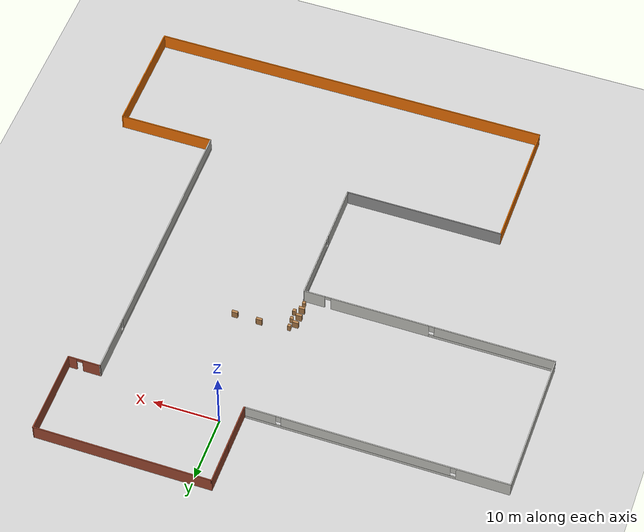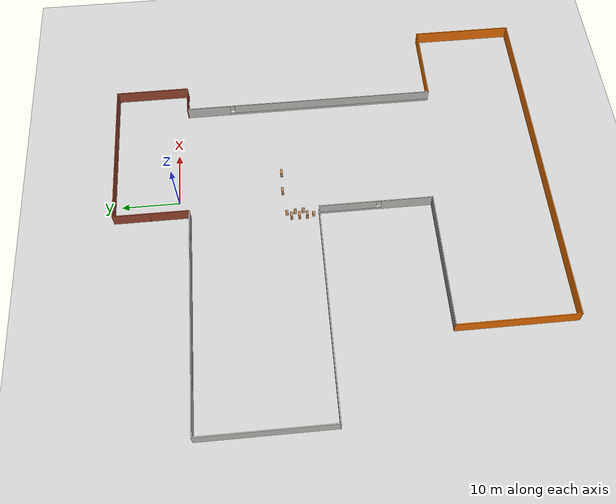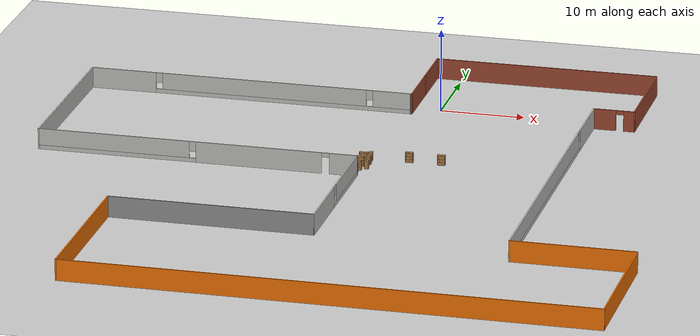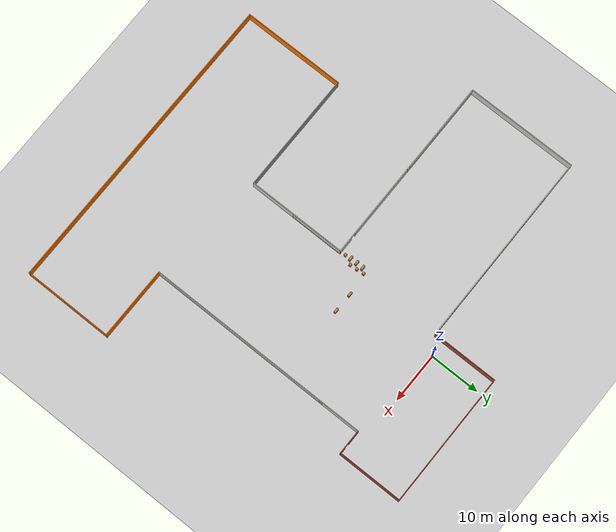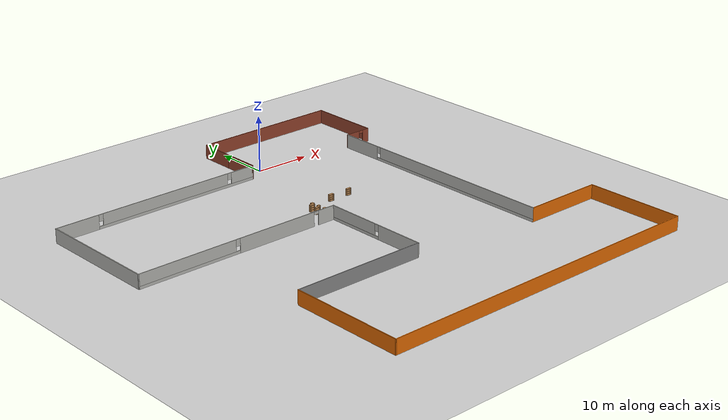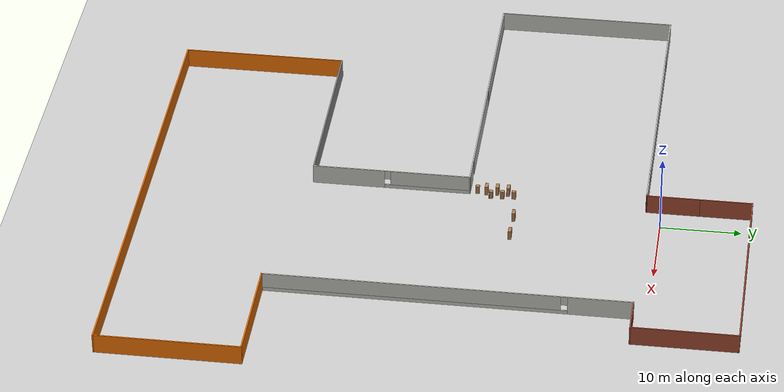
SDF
<sdf version="1.6">
 <world name="default">
  <model name="ground_plane">
   <static>1</static>
   <link name="link">
    <collision name="collision">
     <geometry><plane><normal>0 0 1</normal><size>100 100</size></plane></geometry>
     <surface>
      <contact><collide_bitmask>65535</collide_bitmask></contact>
      <friction><ode><mu>100</mu><mu2>50</mu2></ode></friction>
     </surface>
    </collision>
    <visual name="visual">
     <cast_shadows>0</cast_shadows>
     <geometry><plane><normal>0 0 1</normal><size>100 100</size></plane></geometry>
     <material>
      <script><uri>file://media/materials/scripts/gazebo.material</uri><name>Gazebo/Grey</name></script>
     </material>
    </visual>
   </link>
  </model>
  <model name="Firstfloor">
   <pose>-4.49 -26.435 0 0 -0 0</pose>
   <link name="Wall_0">
    <collision name="Wall_0_Collision">
     <geometry><box><size>6.75 0.15 2.5</size></box></geometry>
     <pose>0 0 1.25 0 -0 0</pose>
    </collision>
    <visual name="Wall_0_Visual">
     <pose>0 0 1.25 0 -0 0</pose>
     <geometry><box><size>6.75 0.15 2.5</size></box></geometry>
     <material>
      <script><uri>file://media/materials/scripts/gazebo.material</uri><name>Gazebo/Bricks</name></script>
      <ambient>1 1 1 1</ambient>
     </material>
     <meta><layer>0</layer></meta>
    </visual>
    <pose>1.45 27.875 0 0 -0 1.5708</pose>
   </link>
   <link name="Wall_1">
    <collision name="Wall_1_Collision">
     <geometry><box><size>6.5 0.15 2.5</size></box></geometry>
     <pose>0 0 1.25 0 -0 0</pose>
    </collision>
    <visual name="Wall_1_Visual">
     <pose>0 0 1.25 0 -0 0</pose>
     <geometry><box><size>6.5 0.15 2.5</size></box></geometry>
     <material>
      <script><uri>file://media/materials/scripts/gazebo.material</uri><name>Gazebo/Bricks</name></script>
      <ambient>1 1 1 1</ambient>
     </material>
     <meta><layer>0</layer></meta>
    </visual>
    <pose>1.45 34.35 0 0 -0 1.5708</pose>
   </link>
   <link name="Wall_10">
    <collision name="Wall_10_Collision">
     <geometry><box><size>24 0.15 2.5</size></box></geometry>
     <pose>0 0 1.25 0 -0 0</pose>
    </collision>
    <visual name="Wall_10_Visual">
     <pose>0 0 1.25 0 -0 0</pose>
     <geometry><box><size>24 0.15 2.5</size></box></geometry>
     <material>
      <script><uri>file://media/materials/scripts/gazebo.material</uri><name>Gazebo/Grey</name></script>
      <ambient>1 1 1 1</ambient>
     </material>
     <meta><layer>0</layer></meta>
    </visual>
    <pose>-11.625 -17.175 0 0 -0 0</pose>
   </link>
   <link name="Wall_11">
    <pose>0.3 -7.375 0 0 -0 1.5708</pose>
    <visual name="Wall_11_Visual_0">
     <pose>-5.38328 0 1.25 0 -0 0</pose>
     <geometry><box><size>8.98345 0.15 2.5</size></box></geometry>
     <material>
      <script><uri>file://media/materials/scripts/gazebo.material</uri><name>Gazebo/CeilingTiled</name></script>
      <ambient>1 1 1 1</ambient>
     </material>
     <meta><layer>0</layer></meta>
    </visual>
    <collision name="Wall_11_Collision_0">
     <geometry><box><size>8.98345 0.15 2.5</size></box></geometry>
     <pose>-5.38328 0 1.25 0 -0 0</pose>
    </collision>
    <visual name="Wall_11_Visual_1">
     <pose>4.49172 0 0.25 0 -0 0</pose>
     <geometry><box><size>10.7666 0.15 0.5</size></box></geometry>
     <material>
      <script><uri>file://media/materials/scripts/gazebo.material</uri><name>Gazebo/CeilingTiled</name></script>
      <ambient>1 1 1 1</ambient>
     </material>
     <meta><layer>0</layer></meta>
    </visual>
    <collision name="Wall_11_Collision_1">
     <geometry><box><size>10.7666 0.15 0.5</size></box></geometry>
     <pose>4.49172 0 0.25 0 -0 0</pose>
    </collision>
    <visual name="Wall_11_Visual_2">
     <pose>4.89173 0 1.5 0 -0 0</pose>
     <geometry><box><size>9.96655 0.15 2</size></box></geometry>
     <material>
      <script><uri>file://media/materials/scripts/gazebo.material</uri><name>Gazebo/CeilingTiled</name></script>
      <ambient>1 1 1 1</ambient>
     </material>
     <meta><layer>0</layer></meta>
    </visual>
    <collision name="Wall_11_Collision_2">
     <geometry><box><size>9.96655 0.15 2</size></box></geometry>
     <pose>4.89173 0 1.5 0 -0 0</pose>
    </collision>
    <visual name="Wall_11_Visual_3">
     <pose>-0.49155 0 1.9 0 -0 0</pose>
     <geometry><box><size>0.8 0.15 1.2</size></box></geometry>
     <material>
      <script><uri>file://media/materials/scripts/gazebo.material</uri><name>Gazebo/CeilingTiled</name></script>
      <ambient>1 1 1 1</ambient>
     </material>
     <meta><layer>0</layer></meta>
    </visual>
    <collision name="Wall_11_Collision_3">
     <geometry><box><size>0.8 0.15 1.2</size></box></geometry>
     <pose>-0.49155 0 1.9 0 -0 0</pose>
    </collision>
   </link>
   <link name="Wall_12">
    <pose>-18.625 2.425 0 0 -0 3.14159</pose>
    <visual name="Wall_12_Visual_0">
     <pose>-17.3553 0 1.25 0 -0 0</pose>
     <geometry><box><size>3.28937 0.15 2.5</size></box></geometry>
     <material>
      <script><uri>file://media/materials/scripts/gazebo.material</uri><name>Gazebo/CeilingTiled</name></script>
      <ambient>1 1 1 1</ambient>
     </material>
     <meta><layer>0</layer></meta>
    </visual>
    <collision name="Wall_12_Collision_0">
     <geometry><box><size>3.28937 0.15 2.5</size></box></geometry>
     <pose>-17.3553 0 1.25 0 -0 0</pose>
    </collision>
    <visual name="Wall_12_Visual_1">
     <pose>-7.35452 0 1.25 0 -0 0</pose>
     <geometry><box><size>14.9122 0.15 2.5</size></box></geometry>
     <material>
      <script><uri>file://media/materials/scripts/gazebo.material</uri><name>Gazebo/CeilingTiled</name></script>
      <ambient>1 1 1 1</ambient>
     </material>
     <meta><layer>0</layer></meta>
    </visual>
    <collision name="Wall_12_Collision_1">
     <geometry><box><size>14.9122 0.15 2.5</size></box></geometry>
     <pose>-7.35452 0 1.25 0 -0 0</pose>
    </collision>
    <visual name="Wall_12_Visual_2">
     <pose>9.5508 0 0.25 0 -0 0</pose>
     <geometry><box><size>18.8984 0.15 0.5</size></box></geometry>
     <material>
      <script><uri>file://media/materials/scripts/gazebo.material</uri><name>Gazebo/CeilingTiled</name></script>
      <ambient>1 1 1 1</ambient>
     </material>
     <meta><layer>0</layer></meta>
    </visual>
    <collision name="Wall_12_Collision_2">
     <geometry><box><size>18.8984 0.15 0.5</size></box></geometry>
     <pose>9.5508 0 0.25 0 -0 0</pose>
    </collision>
    <visual name="Wall_12_Visual_3">
     <pose>9.95079 0 1.5 0 -0 0</pose>
     <geometry><box><size>18.0984 0.15 2</size></box></geometry>
     <material>
      <script><uri>file://media/materials/scripts/gazebo.material</uri><name>Gazebo/CeilingTiled</name></script>
      <ambient>1 1 1 1</ambient>
     </material>
     <meta><layer>0</layer></meta>
    </visual>
    <collision name="Wall_12_Collision_3">
     <geometry><box><size>18.0984 0.15 2</size></box></geometry>
     <pose>9.95079 0 1.5 0 -0 0</pose>
    </collision>
    <visual name="Wall_12_Visual_4">
     <pose>0.501591 0 1.9 0 -0 0</pose>
     <geometry><box><size>0.8 0.15 1.2</size></box></geometry>
     <material>
      <script><uri>file://media/materials/scripts/gazebo.material</uri><name>Gazebo/CeilingTiled</name></script>
      <ambient>1 1 1 1</ambient>
     </material>
     <meta><layer>0</layer></meta>
    </visual>
    <collision name="Wall_12_Collision_4">
     <geometry><box><size>0.8 0.15 1.2</size></box></geometry>
     <pose>0.501591 0 1.9 0 -0 0</pose>
    </collision>
    <visual name="Wall_12_Visual_5">
     <pose>-15.2606 0 2.25 0 -0 0</pose>
     <geometry><box><size>0.9 0.15 0.5</size></box></geometry>
     <material>
      <script><uri>file://media/materials/scripts/gazebo.material</uri><name>Gazebo/CeilingTiled</name></script>
      <ambient>1 1 1 1</ambient>
     </material>
     <meta><layer>0</layer></meta>
    </visual>
    <collision name="Wall_12_Collision_5">
     <geometry><box><size>0.9 0.15 0.5</size></box></geometry>
     <pose>-15.2606 0 2.25 0 -0 0</pose>
    </collision>
   </link>
   <link name="Wall_13">
    <collision name="Wall_13_Collision">
     <geometry><box><size>22.25 0.15 2.5</size></box></geometry>
     <pose>0 0 1.25 0 -0 0</pose>
    </collision>
    <visual name="Wall_13_Visual">
     <pose>0 0 1.25 0 -0 0</pose>
     <geometry><box><size>22.25 0.15 2.5</size></box></geometry>
     <material>
      <script><uri>file://media/materials/scripts/gazebo.material</uri><name>Gazebo/CeilingTiled</name></script>
      <ambient>1 1 1 1</ambient>
     </material>
     <meta><layer>0</layer></meta>
    </visual>
    <pose>-37.55 13.475 0 0 -0 1.5708</pose>
   </link>
   <link name="Wall_14">
    <pose>-18.125 24.525 0 0 -0 0</pose>
    <visual name="Wall_14_Visual_0">
     <pose>-15.5453 0 1.25 0 -0 0</pose>
     <geometry><box><size>7.90934 0.15 2.5</size></box></geometry>
     <material>
      <script><uri>file://media/materials/scripts/gazebo.material</uri><name>Gazebo/CeilingTiled</name></script>
      <ambient>1 1 1 1</ambient>
     </material>
     <meta><layer>0</layer></meta>
    </visual>
    <collision name="Wall_14_Collision_0">
     <geometry><box><size>7.90934 0.15 2.5</size></box></geometry>
     <pose>-15.5453 0 1.25 0 -0 0</pose>
    </collision>
    <visual name="Wall_14_Visual_1">
     <pose>3.95467 0 0.25 0 -0 0</pose>
     <geometry><box><size>31.0907 0.15 0.5</size></box></geometry>
     <material>
      <script><uri>file://media/materials/scripts/gazebo.material</uri><name>Gazebo/CeilingTiled</name></script>
      <ambient>1 1 1 1</ambient>
     </material>
     <meta><layer>0</layer></meta>
    </visual>
    <collision name="Wall_14_Collision_1">
     <geometry><box><size>31.0907 0.15 0.5</size></box></geometry>
     <pose>3.95467 0 0.25 0 -0 0</pose>
    </collision>
    <visual name="Wall_14_Visual_2">
     <pose>1.64004 0 1.5 0 -0 0</pose>
     <geometry><box><size>24.8614 0.15 2</size></box></geometry>
     <material>
      <script><uri>file://media/materials/scripts/gazebo.material</uri><name>Gazebo/CeilingTiled</name></script>
      <ambient>1 1 1 1</ambient>
     </material>
     <meta><layer>0</layer></meta>
    </visual>
    <collision name="Wall_14_Collision_2">
     <geometry><box><size>24.8614 0.15 2</size></box></geometry>
     <pose>1.64004 0 1.5 0 -0 0</pose>
    </collision>
    <visual name="Wall_14_Visual_3">
     <pose>17.1854 0 1.5 0 -0 0</pose>
     <geometry><box><size>4.62927 0.15 2</size></box></geometry>
     <material>
      <script><uri>file://media/materials/scripts/gazebo.material</uri><name>Gazebo/CeilingTiled</name></script>
      <ambient>1 1 1 1</ambient>
     </material>
     <meta><layer>0</layer></meta>
    </visual>
    <collision name="Wall_14_Collision_3">
     <geometry><box><size>4.62927 0.15 2</size></box></geometry>
     <pose>17.1854 0 1.5 0 -0 0</pose>
    </collision>
    <visual name="Wall_14_Visual_4">
     <pose>-11.1907 0 1.9 0 -0 0</pose>
     <geometry><box><size>0.8 0.15 1.2</size></box></geometry>
     <material>
      <script><uri>file://media/materials/scripts/gazebo.material</uri><name>Gazebo/CeilingTiled</name></script>
      <ambient>1 1 1 1</ambient>
     </material>
     <meta><layer>0</layer></meta>
    </visual>
    <collision name="Wall_14_Collision_4">
     <geometry><box><size>0.8 0.15 1.2</size></box></geometry>
     <pose>-11.1907 0 1.9 0 -0 0</pose>
    </collision>
    <visual name="Wall_14_Visual_5">
     <pose>14.4707 0 1.9 0 -0 0</pose>
     <geometry><box><size>0.8 0.15 1.2</size></box></geometry>
     <material>
      <script><uri>file://media/materials/scripts/gazebo.material</uri><name>Gazebo/CeilingTiled</name></script>
      <ambient>1 1 1 1</ambient>
     </material>
     <meta><layer>0</layer></meta>
    </visual>
    <collision name="Wall_14_Collision_5">
     <geometry><box><size>0.8 0.15 1.2</size></box></geometry>
     <pose>14.4707 0 1.9 0 -0 0</pose>
    </collision>
   </link>
   <link name="Wall_16">
    <collision name="Wall_16_Collision">
     <geometry><box><size>0.308114 0.15 2.5</size></box></geometry>
     <pose>0 0 1.25 0 -0 0</pose>
    </collision>
    <visual name="Wall_16_Visual">
     <pose>0 0 1.25 0 -0 0</pose>
     <geometry><box><size>0.308114 0.15 2.5</size></box></geometry>
     <material>
      <script><uri>file://media/materials/scripts/gazebo.material</uri><name>Gazebo/Bricks</name></script>
      <ambient>1 1 1 1</ambient>
     </material>
     <meta><layer>0</layer></meta>
    </visual>
    <pose>1.375 24.55 0 0 -0 0.321751</pose>
   </link>
   <link name="Wall_2">
    <collision name="Wall_2_Collision">
     <geometry><box><size>26.75 0.15 2.5</size></box></geometry>
     <pose>0 0 1.25 0 -0 0</pose>
    </collision>
    <visual name="Wall_2_Visual">
     <pose>0 0 1.25 0 -0 0</pose>
     <geometry><box><size>26.75 0.15 2.5</size></box></geometry>
     <material>
      <script><uri>file://media/materials/scripts/gazebo.material</uri><name>Gazebo/Bricks</name></script>
      <ambient>1 1 1 1</ambient>
     </material>
     <meta><layer>0</layer></meta>
    </visual>
    <pose>14.75 37.525 0 0 -0 0</pose>
   </link>
   <link name="Wall_3">
    <collision name="Wall_3_Collision">
     <geometry><box><size>13 0.15 2.5</size></box></geometry>
     <pose>0 0 1.25 0 -0 0</pose>
    </collision>
    <visual name="Wall_3_Visual">
     <pose>0 0 1.25 0 -0 0</pose>
     <geometry><box><size>13 0.15 2.5</size></box></geometry>
     <material>
      <script><uri>file://media/materials/scripts/gazebo.material</uri><name>Gazebo/Bricks</name></script>
      <ambient>1 1 1 1</ambient>
     </material>
     <meta><layer>0</layer></meta>
    </visual>
    <pose>28.05 31.1 0 0 0 -1.5708</pose>
   </link>
   <link name="Wall_4">
    <pose>25.625 24.675 0 0 -0 3.14159</pose>
    <visual name="Wall_4_Visual_0">
     <pose>-1.81649 0 1.25 0 -0 0</pose>
     <geometry><box><size>1.36703 0.15 2.5</size></box></geometry>
     <material>
      <script><uri>file://media/materials/scripts/gazebo.material</uri><name>Gazebo/Bricks</name></script>
      <ambient>1 1 1 1</ambient>
     </material>
     <meta><layer>0</layer></meta>
    </visual>
    <collision name="Wall_4_Collision_0">
     <geometry><box><size>1.36703 0.15 2.5</size></box></geometry>
     <pose>-1.81649 0 1.25 0 -0 0</pose>
    </collision>
    <visual name="Wall_4_Visual_1">
     <pose>1.13351 0 1.25 0 -0 0</pose>
     <geometry><box><size>2.73297 0.15 2.5</size></box></geometry>
     <material>
      <script><uri>file://media/materials/scripts/gazebo.material</uri><name>Gazebo/Bricks</name></script>
      <ambient>1 1 1 1</ambient>
     </material>
     <meta><layer>0</layer></meta>
    </visual>
    <collision name="Wall_4_Collision_1">
     <geometry><box><size>2.73297 0.15 2.5</size></box></geometry>
     <pose>1.13351 0 1.25 0 -0 0</pose>
    </collision>
    <visual name="Wall_4_Visual_2">
     <pose>-0.682972 0 2.25 0 -0 0</pose>
     <geometry><box><size>0.9 0.15 0.5</size></box></geometry>
     <material>
      <script><uri>file://media/materials/scripts/gazebo.material</uri><name>Gazebo/Bricks</name></script>
      <ambient>1 1 1 1</ambient>
     </material>
     <meta><layer>0</layer></meta>
    </visual>
    <collision name="Wall_4_Collision_2">
     <geometry><box><size>0.9 0.15 0.5</size></box></geometry>
     <pose>-0.682972 0 2.25 0 -0 0</pose>
    </collision>
   </link>
   <link name="Wall_5">
    <pose>23.2 2.375 0 0 0 -1.5708</pose>
    <visual name="Wall_5_Visual_0">
     <pose>-18.4256 0 1.25 0 -0 0</pose>
     <geometry><box><size>7.89886 0.15 2.5</size></box></geometry>
     <material>
      <script><uri>file://media/materials/scripts/gazebo.material</uri><name>Gazebo/CeilingTiled</name></script>
      <ambient>1 1 1 1</ambient>
     </material>
     <meta><layer>0</layer></meta>
    </visual>
    <collision name="Wall_5_Collision_0">
     <geometry><box><size>7.89886 0.15 2.5</size></box></geometry>
     <pose>-18.4256 0 1.25 0 -0 0</pose>
    </collision>
    <visual name="Wall_5_Visual_1">
     <pose>3.94943 0 0.25 0 -0 0</pose>
     <geometry><box><size>36.8511 0.15 0.5</size></box></geometry>
     <material>
      <script><uri>file://media/materials/scripts/gazebo.material</uri><name>Gazebo/CeilingTiled</name></script>
      <ambient>1 1 1 1</ambient>
     </material>
     <meta><layer>0</layer></meta>
    </visual>
    <collision name="Wall_5_Collision_1">
     <geometry><box><size>36.8511 0.15 0.5</size></box></geometry>
     <pose>3.94943 0 0.25 0 -0 0</pose>
    </collision>
    <visual name="Wall_5_Visual_2">
     <pose>4.34943 0 1.5 0 -0 0</pose>
     <geometry><box><size>36.0511 0.15 2</size></box></geometry>
     <material>
      <script><uri>file://media/materials/scripts/gazebo.material</uri><name>Gazebo/CeilingTiled</name></script>
      <ambient>1 1 1 1</ambient>
     </material>
     <meta><layer>0</layer></meta>
    </visual>
    <collision name="Wall_5_Collision_2">
     <geometry><box><size>36.0511 0.15 2</size></box></geometry>
     <pose>4.34943 0 1.5 0 -0 0</pose>
    </collision>
    <visual name="Wall_5_Visual_3">
     <pose>-14.0761 0 1.9 0 -0 0</pose>
     <geometry><box><size>0.8 0.15 1.2</size></box></geometry>
     <material>
      <script><uri>file://media/materials/scripts/gazebo.material</uri><name>Gazebo/CeilingTiled</name></script>
      <ambient>1 1 1 1</ambient>
     </material>
     <meta><layer>0</layer></meta>
    </visual>
    <collision name="Wall_5_Collision_3">
     <geometry><box><size>0.8 0.15 1.2</size></box></geometry>
     <pose>-14.0761 0 1.9 0 -0 0</pose>
    </collision>
   </link>
   <link name="Wall_6">
    <collision name="Wall_6_Collision">
     <geometry><box><size>14.5 0.15 2.5</size></box></geometry>
     <pose>0 0 1.25 0 -0 0</pose>
    </collision>
    <visual name="Wall_6_Visual">
     <pose>0 0 1.25 0 -0 0</pose>
     <geometry><box><size>14.5 0.15 2.5</size></box></geometry>
     <material>
      <script><uri>file://media/materials/scripts/gazebo.material</uri><name>Gazebo/Grey</name></script>
      <ambient>0.996078 0.47451 0.0196078 1</ambient>
     </material>
     <meta><layer>0</layer></meta>
    </visual>
    <pose>30.375 -19.925 0 0 -0 0</pose>
   </link>
   <link name="Wall_7">
    <collision name="Wall_7_Collision">
     <geometry><box><size>17.75 0.15 2.5</size></box></geometry>
     <pose>0 0 1.25 0 -0 0</pose>
    </collision>
    <visual name="Wall_7_Visual">
     <pose>0 0 1.25 0 -0 0</pose>
     <geometry><box><size>17.75 0.15 2.5</size></box></geometry>
     <material>
      <script><uri>file://media/materials/scripts/gazebo.material</uri><name>Gazebo/Grey</name></script>
      <ambient>0.996078 0.47451 0.0196078 1</ambient>
     </material>
     <meta><layer>0</layer></meta>
    </visual>
    <pose>37.55 -28.725 0 0 0 -1.5708</pose>
   </link>
   <link name="Wall_8">
    <collision name="Wall_8_Collision">
     <geometry><box><size>61.25 0.15 2.5</size></box></geometry>
     <pose>0 0 1.25 0 -0 0</pose>
    </collision>
    <visual name="Wall_8_Visual">
     <pose>0 0 1.25 0 -0 0</pose>
     <geometry><box><size>61.25 0.15 2.5</size></box></geometry>
     <material>
      <script><uri>file://media/materials/scripts/gazebo.material</uri><name>Gazebo/Grey</name></script>
      <ambient>0.996078 0.47451 0.0196078 1</ambient>
     </material>
     <meta><layer>0</layer></meta>
    </visual>
    <pose>7 -37.525 0 0 -0 3.14159</pose>
   </link>
   <link name="Wall_9">
    <collision name="Wall_9_Collision">
     <geometry><box><size>20.5 0.15 2.5</size></box></geometry>
     <pose>0 0 1.25 0 -0 0</pose>
    </collision>
    <visual name="Wall_9_Visual">
     <pose>0 0 1.25 0 -0 0</pose>
     <geometry><box><size>20.5 0.15 2.5</size></box></geometry>
     <material>
      <script><uri>file://media/materials/scripts/gazebo.material</uri><name>Gazebo/Grey</name></script>
      <ambient>0.996078 0.47451 0.0196078 1</ambient>
     </material>
     <meta><layer>0</layer></meta>
    </visual>
    <pose>-23.55 -27.35 0 0 -0 1.5708</pose>
   </link>
   <static>1</static>
  </model>
  <model name="bookshelf_clone_22">
   <static>1</static>
   <link name="link">
    <inertial><mass>1</mass></inertial>
    <collision name="back">
     <pose>0 0.005 0.6 0 -0 0</pose>
     <geometry><box><size>0.9 0.01 1.2</size></box></geometry>
    </collision>
    <visual name="visual1">
     <pose>0 0.005 0.6 0 -0 0</pose>
     <geometry><box><size>0.9 0.01 1.2</size></box></geometry>
     <material>
      <script><uri>file://media/materials/scripts/gazebo.material</uri><name>Gazebo/Wood</name></script>
     </material>
    </visual>
    <collision name="left_side">
     <pose>0.45 -0.195 0.6 0 -0 0</pose>
     <geometry><box><size>0.02 0.4 1.2</size></box></geometry>
    </collision>
    <visual name="visual2">
     <pose>0.45 -0.195 0.6 0 -0 0</pose>
     <geometry><box><size>0.02 0.4 1.2</size></box></geometry>
     <material>
      <script><uri>file://media/materials/scripts/gazebo.material</uri><name>Gazebo/Wood</name></script>
     </material>
    </visual>
    <collision name="right_side">
     <pose>-0.45 -0.195 0.6 0 -0 0</pose>
     <geometry><box><size>0.02 0.4 1.2</size></box></geometry>
    </collision>
    <visual name="visual3">
     <pose>-0.45 -0.195 0.6 0 -0 0</pose>
     <geometry><box><size>0.02 0.4 1.2</size></box></geometry>
     <material>
      <script><uri>file://media/materials/scripts/gazebo.material</uri><name>Gazebo/Wood</name></script>
     </material>
    </visual>
    <collision name="bottom">
     <pose>0 -0.195 0.03 0 -0 0</pose>
     <geometry><box><size>0.88 0.4 0.06</size></box></geometry>
    </collision>
    <visual name="visual4">
     <pose>0 -0.195 0.03 0 -0 0</pose>
     <geometry><box><size>0.88 0.4 0.06</size></box></geometry>
     <material>
      <script><uri>file://media/materials/scripts/gazebo.material</uri><name>Gazebo/Wood</name></script>
     </material>
    </visual>
    <collision name="top">
     <pose>0 -0.195 1.19 0 -0 0</pose>
     <geometry><box><size>0.88 0.4 0.02</size></box></geometry>
    </collision>
    <visual name="visual5">
     <pose>0 -0.195 1.19 0 -0 0</pose>
     <geometry><box><size>0.88 0.4 0.02</size></box></geometry>
     <material>
      <script><uri>file://media/materials/scripts/gazebo.material</uri><name>Gazebo/Wood</name></script>
     </material>
    </visual>
    <collision name="low_shelf">
     <pose>0 -0.195 0.43 0 -0 0</pose>
     <geometry><box><size>0.88 0.4 0.02</size></box></geometry>
    </collision>
    <visual name="visual6">
     <pose>0 -0.195 0.43 0 -0 0</pose>
     <geometry><box><size>0.88 0.4 0.02</size></box></geometry>
     <material>
      <script><uri>file://media/materials/scripts/gazebo.material</uri><name>Gazebo/Wood</name></script>
     </material>
    </visual>
    <collision name="high_shelf">
     <pose>0 -0.195 0.8 0 -0 0</pose>
     <geometry><box><size>0.88 0.4 0.02</size></box></geometry>
    </collision>
    <visual name="visual7">
     <pose>0 -0.195 0.8 0 -0 0</pose>
     <geometry><box><size>0.88 0.4 0.02</size></box></geometry>
     <material>
      <script><uri>file://media/materials/scripts/gazebo.material</uri><name>Gazebo/Wood</name></script>
     </material>
    </visual>
   </link>
   <pose>-4.59534 -19.022 0 0 -0 0</pose>
  </model>
  <model name="bookshelf_clone_23">
   <static>1</static>
   <link name="link">
    <inertial><mass>1</mass></inertial>
    <collision name="back">
     <pose>0 0.005 0.6 0 -0 0</pose>
     <geometry><box><size>0.9 0.01 1.2</size></box></geometry>
    </collision>
    <visual name="visual1">
     <pose>0 0.005 0.6 0 -0 0</pose>
     <geometry><box><size>0.9 0.01 1.2</size></box></geometry>
     <material>
      <script><uri>file://media/materials/scripts/gazebo.material</uri><name>Gazebo/Wood</name></script>
     </material>
    </visual>
    <collision name="left_side">
     <pose>0.45 -0.195 0.6 0 -0 0</pose>
     <geometry><box><size>0.02 0.4 1.2</size></box></geometry>
    </collision>
    <visual name="visual2">
     <pose>0.45 -0.195 0.6 0 -0 0</pose>
     <geometry><box><size>0.02 0.4 1.2</size></box></geometry>
     <material>
      <script><uri>file://media/materials/scripts/gazebo.material</uri><name>Gazebo/Wood</name></script>
     </material>
    </visual>
    <collision name="right_side">
     <pose>-0.45 -0.195 0.6 0 -0 0</pose>
     <geometry><box><size>0.02 0.4 1.2</size></box></geometry>
    </collision>
    <visual name="visual3">
     <pose>-0.45 -0.195 0.6 0 -0 0</pose>
     <geometry><box><size>0.02 0.4 1.2</size></box></geometry>
     <material>
      <script><uri>file://media/materials/scripts/gazebo.material</uri><name>Gazebo/Wood</name></script>
     </material>
    </visual>
    <collision name="bottom">
     <pose>0 -0.195 0.03 0 -0 0</pose>
     <geometry><box><size>0.88 0.4 0.06</size></box></geometry>
    </collision>
    <visual name="visual4">
     <pose>0 -0.195 0.03 0 -0 0</pose>
     <geometry><box><size>0.88 0.4 0.06</size></box></geometry>
     <material>
      <script><uri>file://media/materials/scripts/gazebo.material</uri><name>Gazebo/Wood</name></script>
     </material>
    </visual>
    <collision name="top">
     <pose>0 -0.195 1.19 0 -0 0</pose>
     <geometry><box><size>0.88 0.4 0.02</size></box></geometry>
    </collision>
    <visual name="visual5">
     <pose>0 -0.195 1.19 0 -0 0</pose>
     <geometry><box><size>0.88 0.4 0.02</size></box></geometry>
     <material>
      <script><uri>file://media/materials/scripts/gazebo.material</uri><name>Gazebo/Wood</name></script>
     </material>
    </visual>
    <collision name="low_shelf">
     <pose>0 -0.195 0.43 0 -0 0</pose>
     <geometry><box><size>0.88 0.4 0.02</size></box></geometry>
    </collision>
    <visual name="visual6">
     <pose>0 -0.195 0.43 0 -0 0</pose>
     <geometry><box><size>0.88 0.4 0.02</size></box></geometry>
     <material>
      <script><uri>file://media/materials/scripts/gazebo.material</uri><name>Gazebo/Wood</name></script>
     </material>
    </visual>
    <collision name="high_shelf">
     <pose>0 -0.195 0.8 0 -0 0</pose>
     <geometry><box><size>0.88 0.4 0.02</size></box></geometry>
    </collision>
    <visual name="visual7">
     <pose>0 -0.195 0.8 0 -0 0</pose>
     <geometry><box><size>0.88 0.4 0.02</size></box></geometry>
     <material>
      <script><uri>file://media/materials/scripts/gazebo.material</uri><name>Gazebo/Wood</name></script>
     </material>
    </visual>
   </link>
   <pose>-4.62843 -20.3895 0 0 -0 0</pose>
  </model>
  <model name="bookshelf_clone_24">
   <static>1</static>
   <link name="link">
    <inertial><mass>1</mass></inertial>
    <collision name="back">
     <pose>0 0.005 0.6 0 -0 0</pose>
     <geometry><box><size>0.9 0.01 1.2</size></box></geometry>
    </collision>
    <visual name="visual1">
     <pose>0 0.005 0.6 0 -0 0</pose>
     <geometry><box><size>0.9 0.01 1.2</size></box></geometry>
     <material>
      <script><uri>file://media/materials/scripts/gazebo.material</uri><name>Gazebo/Wood</name></script>
     </material>
    </visual>
    <collision name="left_side">
     <pose>0.45 -0.195 0.6 0 -0 0</pose>
     <geometry><box><size>0.02 0.4 1.2</size></box></geometry>
    </collision>
    <visual name="visual2">
     <pose>0.45 -0.195 0.6 0 -0 0</pose>
     <geometry><box><size>0.02 0.4 1.2</size></box></geometry>
     <material>
      <script><uri>file://media/materials/scripts/gazebo.material</uri><name>Gazebo/Wood</name></script>
     </material>
    </visual>
    <collision name="right_side">
     <pose>-0.45 -0.195 0.6 0 -0 0</pose>
     <geometry><box><size>0.02 0.4 1.2</size></box></geometry>
    </collision>
    <visual name="visual3">
     <pose>-0.45 -0.195 0.6 0 -0 0</pose>
     <geometry><box><size>0.02 0.4 1.2</size></box></geometry>
     <material>
      <script><uri>file://media/materials/scripts/gazebo.material</uri><name>Gazebo/Wood</name></script>
     </material>
    </visual>
    <collision name="bottom">
     <pose>0 -0.195 0.03 0 -0 0</pose>
     <geometry><box><size>0.88 0.4 0.06</size></box></geometry>
    </collision>
    <visual name="visual4">
     <pose>0 -0.195 0.03 0 -0 0</pose>
     <geometry><box><size>0.88 0.4 0.06</size></box></geometry>
     <material>
      <script><uri>file://media/materials/scripts/gazebo.material</uri><name>Gazebo/Wood</name></script>
     </material>
    </visual>
    <collision name="top">
     <pose>0 -0.195 1.19 0 -0 0</pose>
     <geometry><box><size>0.88 0.4 0.02</size></box></geometry>
    </collision>
    <visual name="visual5">
     <pose>0 -0.195 1.19 0 -0 0</pose>
     <geometry><box><size>0.88 0.4 0.02</size></box></geometry>
     <material>
      <script><uri>file://media/materials/scripts/gazebo.material</uri><name>Gazebo/Wood</name></script>
     </material>
    </visual>
    <collision name="low_shelf">
     <pose>0 -0.195 0.43 0 -0 0</pose>
     <geometry><box><size>0.88 0.4 0.02</size></box></geometry>
    </collision>
    <visual name="visual6">
     <pose>0 -0.195 0.43 0 -0 0</pose>
     <geometry><box><size>0.88 0.4 0.02</size></box></geometry>
     <material>
      <script><uri>file://media/materials/scripts/gazebo.material</uri><name>Gazebo/Wood</name></script>
     </material>
    </visual>
    <collision name="high_shelf">
     <pose>0 -0.195 0.8 0 -0 0</pose>
     <geometry><box><size>0.88 0.4 0.02</size></box></geometry>
    </collision>
    <visual name="visual7">
     <pose>0 -0.195 0.8 0 -0 0</pose>
     <geometry><box><size>0.88 0.4 0.02</size></box></geometry>
     <material>
      <script><uri>file://media/materials/scripts/gazebo.material</uri><name>Gazebo/Wood</name></script>
     </material>
    </visual>
   </link>
   <pose>-4.59523 -21.7292 0 0 -0 0</pose>
  </model>
  <model name="cabinet_1_clone">
   <static>1</static>
   <link name="cabinet_bottom_plate">
    <inertial>
     <pose>0 0 -1 0 -0 0</pose>
     <inertia><ixx>2.05</ixx><ixy>0</ixy><ixz>0</ixz><iyy>2.05</iyy><iyz>0</iyz><izz>2.05</izz></inertia>
     <mass>25</mass>
    </inertial>
    <collision name="cabinet_bottom_plate_geom">
     <pose>0 0 0.01 0 -0 0</pose>
     <geometry><box><size>0.45 0.45 0.02</size></box></geometry>
    </collision>
    <visual name="cabinet_bottom_plate_geom_visual">
     <pose>0 0 0.01 0 -0 0</pose>
     <geometry><box><size>0.45 0.45 0.02</size></box></geometry>
     <material>
      <script><uri>file://media/materials/scripts/gazebo.material</uri><name>Gazebo/Wood</name></script>
     </material>
    </visual>
    <collision name="cabinet_bottom_plate_geom_cabinet_back_plate">
     <pose>0.235 0 0.51 0 -0 0</pose>
     <geometry><box><size>0.02 0.45 1.02</size></box></geometry>
    </collision>
    <visual name="cabinet_bottom_plate_geom_cabinet_back_plate_visual">
     <pose>0.235 0 0.51 0 -0 0</pose>
     <geometry><box><size>0.02 0.45 1.02</size></box></geometry>
     <material>
      <script><uri>file://media/materials/scripts/gazebo.material</uri><name>Gazebo/Wood</name></script>
     </material>
    </visual>
    <collision name="cabinet_bottom_plate_geom_cabinet_left_plate">
     <pose>0 0.235 0.51 0 -0 0</pose>
     <geometry><box><size>0.45 0.02 1.02</size></box></geometry>
    </collision>
    <visual name="cabinet_bottom_plate_geom_cabinet_left_plate_visual">
     <pose>0 0.235 0.51 0 -0 0</pose>
     <geometry><box><size>0.45 0.02 1.02</size></box></geometry>
     <material>
      <script><uri>file://media/materials/scripts/gazebo.material</uri><name>Gazebo/Wood</name></script>
     </material>
    </visual>
    <collision name="cabinet_bottom_plate_geom_cabinet_middle_plate">
     <pose>0 0 0.51 0 -0 0</pose>
     <geometry><box><size>0.45 0.45 0.02</size></box></geometry>
    </collision>
    <visual name="cabinet_bottom_plate_geom_cabinet_middle_plate_visual">
     <pose>0 0 0.51 0 -0 0</pose>
     <geometry><box><size>0.45 0.45 0.02</size></box></geometry>
     <material>
      <script><uri>file://media/materials/scripts/gazebo.material</uri><name>Gazebo/Wood</name></script>
     </material>
    </visual>
    <collision name="cabinet_bottom_plate_geom_cabinet_right_plate">
     <pose>0 -0.235 0.51 0 -0 0</pose>
     <geometry><box><size>0.45 0.02 1.02</size></box></geometry>
    </collision>
    <visual name="cabinet_bottom_plate_geom_cabinet_right_plate_visual">
     <pose>0 -0.235 0.51 0 -0 0</pose>
     <geometry><box><size>0.45 0.02 1.02</size></box></geometry>
     <material>
      <script><uri>file://media/materials/scripts/gazebo.material</uri><name>Gazebo/Wood</name></script>
     </material>
    </visual>
    <collision name="cabinet_bottom_plate_geom_cabinet_top_plate">
     <pose>0 0 1.01 0 -0 0</pose>
     <geometry><box><size>0.45 0.45 0.02</size></box></geometry>
    </collision>
    <visual name="cabinet_bottom_plate_geom_cabinet_top_plate_visual">
     <pose>0 0 1.01 0 -0 0</pose>
     <geometry><box><size>0.45 0.45 0.02</size></box></geometry>
     <material>
      <script><uri>file://media/materials/scripts/gazebo.material</uri><name>Gazebo/Wood</name></script>
     </material>
    </visual>
   </link>
   <pose>-4.54025 -23.0519 0 0 -0 0</pose>
  </model>
  <model name="cabinet_1_clone_clone">
   <static>1</static>
   <link name="cabinet_bottom_plate">
    <inertial>
     <pose>0 0 -1 0 -0 0</pose>
     <inertia><ixx>2.05</ixx><ixy>0</ixy><ixz>0</ixz><iyy>2.05</iyy><iyz>0</iyz><izz>2.05</izz></inertia>
     <mass>25</mass>
    </inertial>
    <collision name="cabinet_bottom_plate_geom">
     <pose>0 0 0.01 0 -0 0</pose>
     <geometry><box><size>0.45 0.45 0.02</size></box></geometry>
    </collision>
    <visual name="cabinet_bottom_plate_geom_visual">
     <pose>0 0 0.01 0 -0 0</pose>
     <geometry><box><size>0.45 0.45 0.02</size></box></geometry>
     <material>
      <script><uri>file://media/materials/scripts/gazebo.material</uri><name>Gazebo/Wood</name></script>
     </material>
    </visual>
    <collision name="cabinet_bottom_plate_geom_cabinet_back_plate">
     <pose>0.235 0 0.51 0 -0 0</pose>
     <geometry><box><size>0.02 0.45 1.02</size></box></geometry>
    </collision>
    <visual name="cabinet_bottom_plate_geom_cabinet_back_plate_visual">
     <pose>0.235 0 0.51 0 -0 0</pose>
     <geometry><box><size>0.02 0.45 1.02</size></box></geometry>
     <material>
      <script><uri>file://media/materials/scripts/gazebo.material</uri><name>Gazebo/Wood</name></script>
     </material>
    </visual>
    <collision name="cabinet_bottom_plate_geom_cabinet_left_plate">
     <pose>0 0.235 0.51 0 -0 0</pose>
     <geometry><box><size>0.45 0.02 1.02</size></box></geometry>
    </collision>
    <visual name="cabinet_bottom_plate_geom_cabinet_left_plate_visual">
     <pose>0 0.235 0.51 0 -0 0</pose>
     <geometry><box><size>0.45 0.02 1.02</size></box></geometry>
     <material>
      <script><uri>file://media/materials/scripts/gazebo.material</uri><name>Gazebo/Wood</name></script>
     </material>
    </visual>
    <collision name="cabinet_bottom_plate_geom_cabinet_middle_plate">
     <pose>0 0 0.51 0 -0 0</pose>
     <geometry><box><size>0.45 0.45 0.02</size></box></geometry>
    </collision>
    <visual name="cabinet_bottom_plate_geom_cabinet_middle_plate_visual">
     <pose>0 0 0.51 0 -0 0</pose>
     <geometry><box><size>0.45 0.45 0.02</size></box></geometry>
     <material>
      <script><uri>file://media/materials/scripts/gazebo.material</uri><name>Gazebo/Wood</name></script>
     </material>
    </visual>
    <collision name="cabinet_bottom_plate_geom_cabinet_right_plate">
     <pose>0 -0.235 0.51 0 -0 0</pose>
     <geometry><box><size>0.45 0.02 1.02</size></box></geometry>
    </collision>
    <visual name="cabinet_bottom_plate_geom_cabinet_right_plate_visual">
     <pose>0 -0.235 0.51 0 -0 0</pose>
     <geometry><box><size>0.45 0.02 1.02</size></box></geometry>
     <material>
      <script><uri>file://media/materials/scripts/gazebo.material</uri><name>Gazebo/Wood</name></script>
     </material>
    </visual>
    <collision name="cabinet_bottom_plate_geom_cabinet_top_plate">
     <pose>0 0 1.01 0 -0 0</pose>
     <geometry><box><size>0.45 0.45 0.02</size></box></geometry>
    </collision>
    <visual name="cabinet_bottom_plate_geom_cabinet_top_plate_visual">
     <pose>0 0 1.01 0 -0 0</pose>
     <geometry><box><size>0.45 0.45 0.02</size></box></geometry>
     <material>
      <script><uri>file://media/materials/scripts/gazebo.material</uri><name>Gazebo/Wood</name></script>
     </material>
    </visual>
   </link>
   <pose>-3.67353 -21.281 0 0 -0 0</pose>
  </model>
  <model name="cabinet_1_clone_clone_0">
   <static>1</static>
   <link name="cabinet_bottom_plate">
    <inertial>
     <pose>0 0 -1 0 -0 0</pose>
     <inertia><ixx>2.05</ixx><ixy>0</ixy><ixz>0</ixz><iyy>2.05</iyy><iyz>0</iyz><izz>2.05</izz></inertia>
     <mass>25</mass>
    </inertial>
    <collision name="cabinet_bottom_plate_geom">
     <pose>0 0 0.01 0 -0 0</pose>
     <geometry><box><size>0.45 0.45 0.02</size></box></geometry>
    </collision>
    <visual name="cabinet_bottom_plate_geom_visual">
     <pose>0 0 0.01 0 -0 0</pose>
     <geometry><box><size>0.45 0.45 0.02</size></box></geometry>
     <material>
      <script><uri>file://media/materials/scripts/gazebo.material</uri><name>Gazebo/Wood</name></script>
     </material>
    </visual>
    <collision name="cabinet_bottom_plate_geom_cabinet_back_plate">
     <pose>0.235 0 0.51 0 -0 0</pose>
     <geometry><box><size>0.02 0.45 1.02</size></box></geometry>
    </collision>
    <visual name="cabinet_bottom_plate_geom_cabinet_back_plate_visual">
     <pose>0.235 0 0.51 0 -0 0</pose>
     <geometry><box><size>0.02 0.45 1.02</size></box></geometry>
     <material>
      <script><uri>file://media/materials/scripts/gazebo.material</uri><name>Gazebo/Wood</name></script>
     </material>
    </visual>
    <collision name="cabinet_bottom_plate_geom_cabinet_left_plate">
     <pose>0 0.235 0.51 0 -0 0</pose>
     <geometry><box><size>0.45 0.02 1.02</size></box></geometry>
    </collision>
    <visual name="cabinet_bottom_plate_geom_cabinet_left_plate_visual">
     <pose>0 0.235 0.51 0 -0 0</pose>
     <geometry><box><size>0.45 0.02 1.02</size></box></geometry>
     <material>
      <script><uri>file://media/materials/scripts/gazebo.material</uri><name>Gazebo/Wood</name></script>
     </material>
    </visual>
    <collision name="cabinet_bottom_plate_geom_cabinet_middle_plate">
     <pose>0 0 0.51 0 -0 0</pose>
     <geometry><box><size>0.45 0.45 0.02</size></box></geometry>
    </collision>
    <visual name="cabinet_bottom_plate_geom_cabinet_middle_plate_visual">
     <pose>0 0 0.51 0 -0 0</pose>
     <geometry><box><size>0.45 0.45 0.02</size></box></geometry>
     <material>
      <script><uri>file://media/materials/scripts/gazebo.material</uri><name>Gazebo/Wood</name></script>
     </material>
    </visual>
    <collision name="cabinet_bottom_plate_geom_cabinet_right_plate">
     <pose>0 -0.235 0.51 0 -0 0</pose>
     <geometry><box><size>0.45 0.02 1.02</size></box></geometry>
    </collision>
    <visual name="cabinet_bottom_plate_geom_cabinet_right_plate_visual">
     <pose>0 -0.235 0.51 0 -0 0</pose>
     <geometry><box><size>0.45 0.02 1.02</size></box></geometry>
     <material>
      <script><uri>file://media/materials/scripts/gazebo.material</uri><name>Gazebo/Wood</name></script>
     </material>
    </visual>
    <collision name="cabinet_bottom_plate_geom_cabinet_top_plate">
     <pose>0 0 1.01 0 -0 0</pose>
     <geometry><box><size>0.45 0.45 0.02</size></box></geometry>
    </collision>
    <visual name="cabinet_bottom_plate_geom_cabinet_top_plate_visual">
     <pose>0 0 1.01 0 -0 0</pose>
     <geometry><box><size>0.45 0.45 0.02</size></box></geometry>
     <material>
      <script><uri>file://media/materials/scripts/gazebo.material</uri><name>Gazebo/Wood</name></script>
     </material>
    </visual>
   </link>
   <pose>-3.76874 -19.883 0 0 -0 0</pose>
  </model>
  <model name="cabinet_1_clone_clone_1">
   <static>1</static>
   <link name="cabinet_bottom_plate">
    <inertial>
     <pose>0 0 -1 0 -0 0</pose>
     <inertia><ixx>2.05</ixx><ixy>0</ixy><ixz>0</ixz><iyy>2.05</iyy><iyz>0</iyz><izz>2.05</izz></inertia>
     <mass>25</mass>
    </inertial>
    <collision name="cabinet_bottom_plate_geom">
     <pose>0 0 0.01 0 -0 0</pose>
     <geometry><box><size>0.45 0.45 0.02</size></box></geometry>
    </collision>
    <visual name="cabinet_bottom_plate_geom_visual">
     <pose>0 0 0.01 0 -0 0</pose>
     <geometry><box><size>0.45 0.45 0.02</size></box></geometry>
     <material>
      <script><uri>file://media/materials/scripts/gazebo.material</uri><name>Gazebo/Wood</name></script>
     </material>
    </visual>
    <collision name="cabinet_bottom_plate_geom_cabinet_back_plate">
     <pose>0.235 0 0.51 0 -0 0</pose>
     <geometry><box><size>0.02 0.45 1.02</size></box></geometry>
    </collision>
    <visual name="cabinet_bottom_plate_geom_cabinet_back_plate_visual">
     <pose>0.235 0 0.51 0 -0 0</pose>
     <geometry><box><size>0.02 0.45 1.02</size></box></geometry>
     <material>
      <script><uri>file://media/materials/scripts/gazebo.material</uri><name>Gazebo/Wood</name></script>
     </material>
    </visual>
    <collision name="cabinet_bottom_plate_geom_cabinet_left_plate">
     <pose>0 0.235 0.51 0 -0 0</pose>
     <geometry><box><size>0.45 0.02 1.02</size></box></geometry>
    </collision>
    <visual name="cabinet_bottom_plate_geom_cabinet_left_plate_visual">
     <pose>0 0.235 0.51 0 -0 0</pose>
     <geometry><box><size>0.45 0.02 1.02</size></box></geometry>
     <material>
      <script><uri>file://media/materials/scripts/gazebo.material</uri><name>Gazebo/Wood</name></script>
     </material>
    </visual>
    <collision name="cabinet_bottom_plate_geom_cabinet_middle_plate">
     <pose>0 0 0.51 0 -0 0</pose>
     <geometry><box><size>0.45 0.45 0.02</size></box></geometry>
    </collision>
    <visual name="cabinet_bottom_plate_geom_cabinet_middle_plate_visual">
     <pose>0 0 0.51 0 -0 0</pose>
     <geometry><box><size>0.45 0.45 0.02</size></box></geometry>
     <material>
      <script><uri>file://media/materials/scripts/gazebo.material</uri><name>Gazebo/Wood</name></script>
     </material>
    </visual>
    <collision name="cabinet_bottom_plate_geom_cabinet_right_plate">
     <pose>0 -0.235 0.51 0 -0 0</pose>
     <geometry><box><size>0.45 0.02 1.02</size></box></geometry>
    </collision>
    <visual name="cabinet_bottom_plate_geom_cabinet_right_plate_visual">
     <pose>0 -0.235 0.51 0 -0 0</pose>
     <geometry><box><size>0.45 0.02 1.02</size></box></geometry>
     <material>
      <script><uri>file://media/materials/scripts/gazebo.material</uri><name>Gazebo/Wood</name></script>
     </material>
    </visual>
    <collision name="cabinet_bottom_plate_geom_cabinet_top_plate">
     <pose>0 0 1.01 0 -0 0</pose>
     <geometry><box><size>0.45 0.45 0.02</size></box></geometry>
    </collision>
    <visual name="cabinet_bottom_plate_geom_cabinet_top_plate_visual">
     <pose>0 0 1.01 0 -0 0</pose>
     <geometry><box><size>0.45 0.45 0.02</size></box></geometry>
     <material>
      <script><uri>file://media/materials/scripts/gazebo.material</uri><name>Gazebo/Wood</name></script>
     </material>
    </visual>
   </link>
   <pose>-3.90317 -18.4585 0 0 -0 0</pose>
  </model>
  <model name="bookshelf_clone_17_clone_7_clone_2">
   <static>1</static>
   <link name="link">
    <inertial><mass>1</mass></inertial>
    <collision name="back">
     <pose>0 0.005 0.6 0 -0 0</pose>
     <geometry><box><size>0.9 0.01 1.2</size></box></geometry>
    </collision>
    <visual name="visual1">
     <pose>0 0.005 0.6 0 -0 0</pose>
     <geometry><box><size>0.9 0.01 1.2</size></box></geometry>
     <material>
      <script><uri>file://media/materials/scripts/gazebo.material</uri><name>Gazebo/Wood</name></script>
     </material>
    </visual>
    <collision name="left_side">
     <pose>0.45 -0.195 0.6 0 -0 0</pose>
     <geometry><box><size>0.02 0.4 1.2</size></box></geometry>
    </collision>
    <visual name="visual2">
     <pose>0.45 -0.195 0.6 0 -0 0</pose>
     <geometry><box><size>0.02 0.4 1.2</size></box></geometry>
     <material>
      <script><uri>file://media/materials/scripts/gazebo.material</uri><name>Gazebo/Wood</name></script>
     </material>
    </visual>
    <collision name="right_side">
     <pose>-0.45 -0.195 0.6 0 -0 0</pose>
     <geometry><box><size>0.02 0.4 1.2</size></box></geometry>
    </collision>
    <visual name="visual3">
     <pose>-0.45 -0.195 0.6 0 -0 0</pose>
     <geometry><box><size>0.02 0.4 1.2</size></box></geometry>
     <material>
      <script><uri>file://media/materials/scripts/gazebo.material</uri><name>Gazebo/Wood</name></script>
     </material>
    </visual>
    <collision name="bottom">
     <pose>0 -0.195 0.03 0 -0 0</pose>
     <geometry><box><size>0.88 0.4 0.06</size></box></geometry>
    </collision>
    <visual name="visual4">
     <pose>0 -0.195 0.03 0 -0 0</pose>
     <geometry><box><size>0.88 0.4 0.06</size></box></geometry>
     <material>
      <script><uri>file://media/materials/scripts/gazebo.material</uri><name>Gazebo/Wood</name></script>
     </material>
    </visual>
    <collision name="top">
     <pose>0 -0.195 1.19 0 -0 0</pose>
     <geometry><box><size>0.88 0.4 0.02</size></box></geometry>
    </collision>
    <visual name="visual5">
     <pose>0 -0.195 1.19 0 -0 0</pose>
     <geometry><box><size>0.88 0.4 0.02</size></box></geometry>
     <material>
      <script><uri>file://media/materials/scripts/gazebo.material</uri><name>Gazebo/Wood</name></script>
     </material>
    </visual>
    <collision name="low_shelf">
     <pose>0 -0.195 0.43 0 -0 0</pose>
     <geometry><box><size>0.88 0.4 0.02</size></box></geometry>
    </collision>
    <visual name="visual6">
     <pose>0 -0.195 0.43 0 -0 0</pose>
     <geometry><box><size>0.88 0.4 0.02</size></box></geometry>
     <material>
      <script><uri>file://media/materials/scripts/gazebo.material</uri><name>Gazebo/Wood</name></script>
     </material>
    </visual>
    <collision name="high_shelf">
     <pose>0 -0.195 0.8 0 -0 0</pose>
     <geometry><box><size>0.88 0.4 0.02</size></box></geometry>
    </collision>
    <visual name="visual7">
     <pose>0 -0.195 0.8 0 -0 0</pose>
     <geometry><box><size>0.88 0.4 0.02</size></box></geometry>
     <material>
      <script><uri>file://media/materials/scripts/gazebo.material</uri><name>Gazebo/Wood</name></script>
     </material>
    </visual>
   </link>
   <pose>0.553807 -17.8003 0 0 -0 0</pose>
  </model>
  <model name="bookshelf_clone_17_clone_7_clone_5">
   <static>1</static>
   <link name="link">
    <inertial><mass>1</mass></inertial>
    <collision name="back">
     <pose>0 0.005 0.6 0 -0 0</pose>
     <geometry><box><size>0.9 0.01 1.2</size></box></geometry>
    </collision>
    <visual name="visual1">
     <pose>0 0.005 0.6 0 -0 0</pose>
     <geometry><box><size>0.9 0.01 1.2</size></box></geometry>
     <material>
      <script><uri>file://media/materials/scripts/gazebo.material</uri><name>Gazebo/Wood</name></script>
     </material>
    </visual>
    <collision name="left_side">
     <pose>0.45 -0.195 0.6 0 -0 0</pose>
     <geometry><box><size>0.02 0.4 1.2</size></box></geometry>
    </collision>
    <visual name="visual2">
     <pose>0.45 -0.195 0.6 0 -0 0</pose>
     <geometry><box><size>0.02 0.4 1.2</size></box></geometry>
     <material>
      <script><uri>file://media/materials/scripts/gazebo.material</uri><name>Gazebo/Wood</name></script>
     </material>
    </visual>
    <collision name="right_side">
     <pose>-0.45 -0.195 0.6 0 -0 0</pose>
     <geometry><box><size>0.02 0.4 1.2</size></box></geometry>
    </collision>
    <visual name="visual3">
     <pose>-0.45 -0.195 0.6 0 -0 0</pose>
     <geometry><box><size>0.02 0.4 1.2</size></box></geometry>
     <material>
      <script><uri>file://media/materials/scripts/gazebo.material</uri><name>Gazebo/Wood</name></script>
     </material>
    </visual>
    <collision name="bottom">
     <pose>0 -0.195 0.03 0 -0 0</pose>
     <geometry><box><size>0.88 0.4 0.06</size></box></geometry>
    </collision>
    <visual name="visual4">
     <pose>0 -0.195 0.03 0 -0 0</pose>
     <geometry><box><size>0.88 0.4 0.06</size></box></geometry>
     <material>
      <script><uri>file://media/materials/scripts/gazebo.material</uri><name>Gazebo/Wood</name></script>
     </material>
    </visual>
    <collision name="top">
     <pose>0 -0.195 1.19 0 -0 0</pose>
     <geometry><box><size>0.88 0.4 0.02</size></box></geometry>
    </collision>
    <visual name="visual5">
     <pose>0 -0.195 1.19 0 -0 0</pose>
     <geometry><box><size>0.88 0.4 0.02</size></box></geometry>
     <material>
      <script><uri>file://media/materials/scripts/gazebo.material</uri><name>Gazebo/Wood</name></script>
     </material>
    </visual>
    <collision name="low_shelf">
     <pose>0 -0.195 0.43 0 -0 0</pose>
     <geometry><box><size>0.88 0.4 0.02</size></box></geometry>
    </collision>
    <visual name="visual6">
     <pose>0 -0.195 0.43 0 -0 0</pose>
     <geometry><box><size>0.88 0.4 0.02</size></box></geometry>
     <material>
      <script><uri>file://media/materials/scripts/gazebo.material</uri><name>Gazebo/Wood</name></script>
     </material>
    </visual>
    <collision name="high_shelf">
     <pose>0 -0.195 0.8 0 -0 0</pose>
     <geometry><box><size>0.88 0.4 0.02</size></box></geometry>
    </collision>
    <visual name="visual7">
     <pose>0 -0.195 0.8 0 -0 0</pose>
     <geometry><box><size>0.88 0.4 0.02</size></box></geometry>
     <material>
      <script><uri>file://media/materials/scripts/gazebo.material</uri><name>Gazebo/Wood</name></script>
     </material>
    </visual>
   </link>
   <pose>4.32498 -17.8502 0 0 -0 0</pose>
  </model>
 </world>
</sdf>
